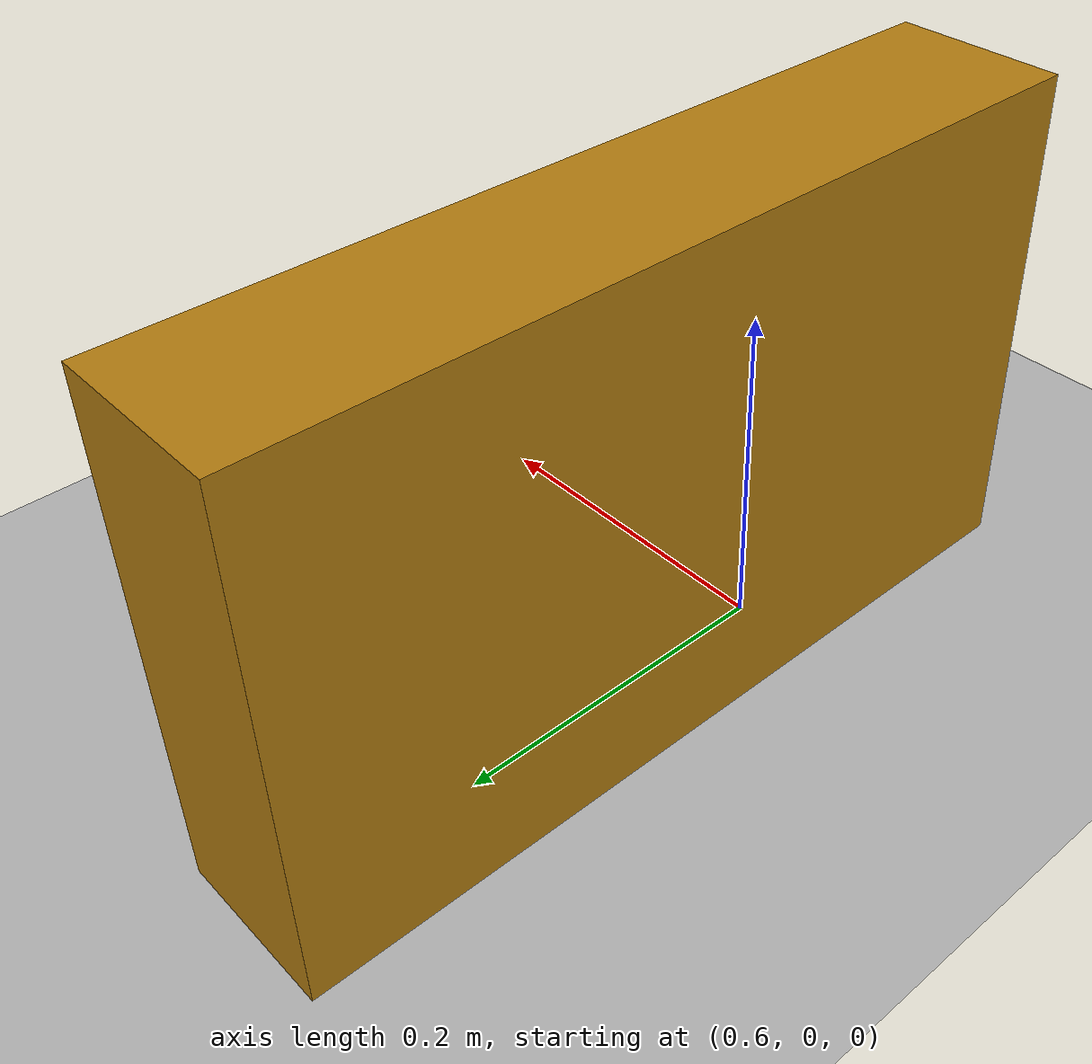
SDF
<?xml version='1.0'?>
<sdf version='1.7'>
  <world name='default'>
    <physics name='1ms' type='ignored'>
      <max_step_size>0.001</max_step_size>
      <real_time_factor>1.0</real_time_factor>
      <real_time_update_rate>1000</real_time_update_rate>
    </physics>

    <light name='sun' type='directional'>
      <cast_shadows>1</cast_shadows>
      <pose frame=''>0 0 10 0 -0 0</pose>
      <diffuse>0.8 0.8 0.8 1</diffuse>
      <specular>0.2 0.2 0.2 1</specular>
      <attenuation>
        <range>1000</range>
        <constant>0.9</constant>
        <linear>0.01</linear>
        <quadratic>0.001</quadratic>
      </attenuation>
      <direction>-0.5 0.1 -0.9</direction>
    </light>

    <model name='ground_plane'>
      <static>1</static>
      <link name='link'>
        <collision name='collision'>
          <geometry>
            <plane>
              <normal>0 0 1</normal>
              <size>100 100</size>
            </plane>
          </geometry>
          <surface>
            <contact>
              <collide_bitmask>65535</collide_bitmask>
              <ode/>
            </contact>
            <friction>
              <ode>
                <mu>100</mu>
                <mu2>50</mu2>
              </ode>
              <torsional>
                <ode/>
              </torsional>
            </friction>
            <bounce/>
          </surface>
          <max_contacts>10</max_contacts>
        </collision>
        <visual name='visual'>
          <cast_shadows>0</cast_shadows>
          <geometry>
            <plane>
              <normal>0 0 1</normal>
              <size>100 100</size>
            </plane>
          </geometry>
          <material>
            <ambient>0.7 0.7 0.7 1.0</ambient>
            <diffuse>0.7 0.7 0.7 1.0</diffuse>
            <specular>0.01 0.01 0.01 1.0</specular>
          </material>
        </visual>
        <self_collide>0</self_collide>
        <enable_wind>0</enable_wind>
        <kinematic>0</kinematic>
      </link>
    </model>

<model name='obstacle'>
      <pose frame=''>0.6 0.083294 0.15 0 -0 0</pose>
      <link name='ob'>
        <visual name='ob_0_Visual_0'>
          <pose frame=''>0.0 0.0 0.0 0 0 0</pose>
          <geometry>
            <box>
              <size>0.1 0.5 0.3</size>
            </box>
          </geometry>
          <material>
            <ambient>0.7 0.490196 0.0666667 1</ambient>
            <diffuse>0.7 0.490196 0.0666667 1</diffuse>
            <specular>0.01 0.01 0.01 1.0</specular>
          </material>
          <meta>
            <layer>0</layer>
          </meta>
        </visual>
        <collision name='ob_0_Collision_0'>
          <geometry>
            <box>
              <size>0.1 0.5 0.3</size>
            </box>
          </geometry>
          <pose frame=''>0.0 0.0 0.0 0 0 0</pose>
          <max_contacts>10</max_contacts>
          <surface>
            <contact>
              <ode/>
            </contact>
            <bounce/>
            <friction>
              <torsional>
                <ode/>
              </torsional>
              <ode/>
            </friction>
          </surface>
        </collision>
        </link>
        <static>1</static>
        </model>

    </world>
</sdf>
